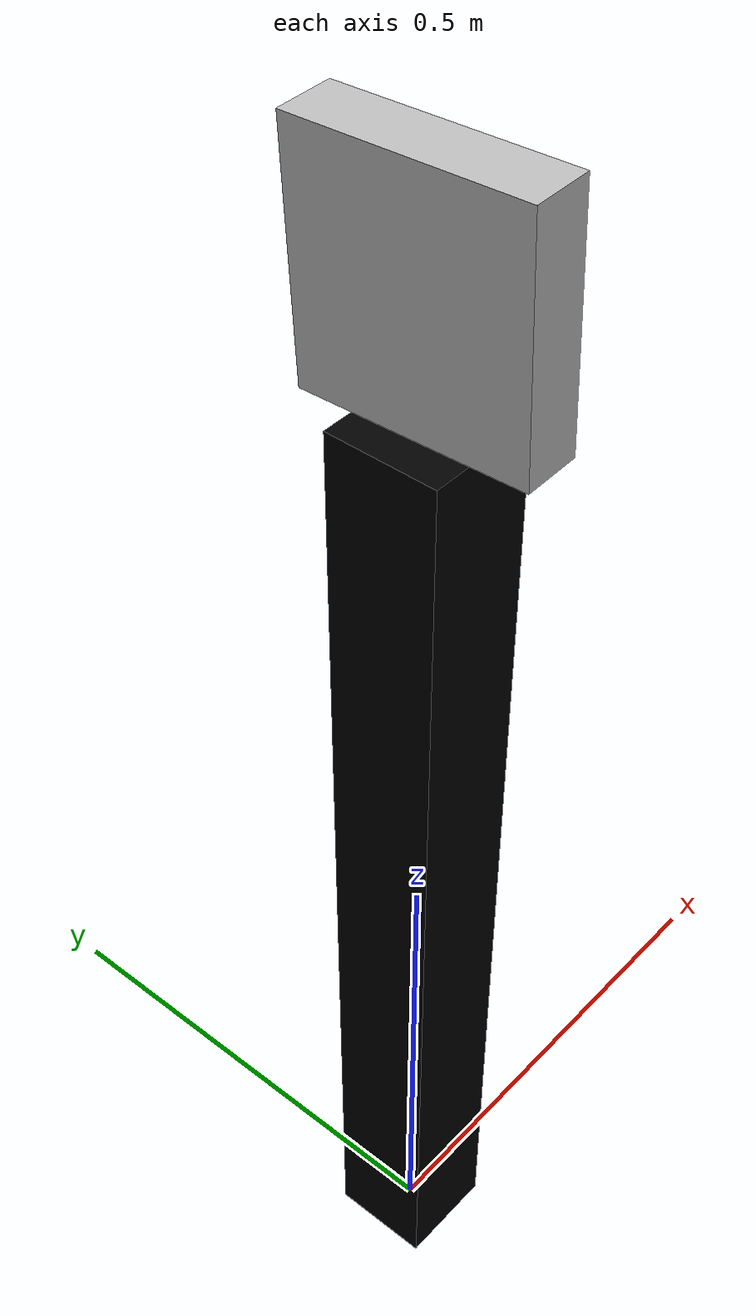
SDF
<?xml version='1.0'?>
<sdf version='1.5'>
  <model name='tag4_w_holder'>
    <static>true</static>
    <link name="tag4_w_holder_link">

        <visual name="visual_tag4_w_holder">
        <geometry>
                <mesh>
                    <uri>model://Tag2_w_holder/meshes/tag4_w_holder.dae</uri>
                </mesh>
            </geometry>
        </visual>
         <collision name="collision_tag4_w_holder">
                <geometry>
                <mesh>
                    <uri>model://Tag2_w_holder/meshes/tag4_w_holder.dae</uri>
                </mesh>
            </geometry>
        </collision>

    </link>
  </model>
</sdf>
~
